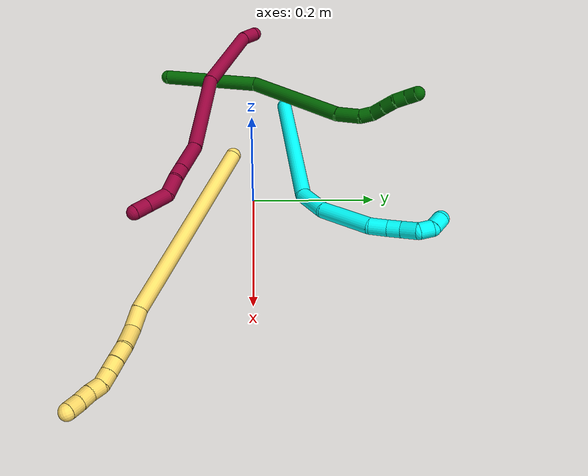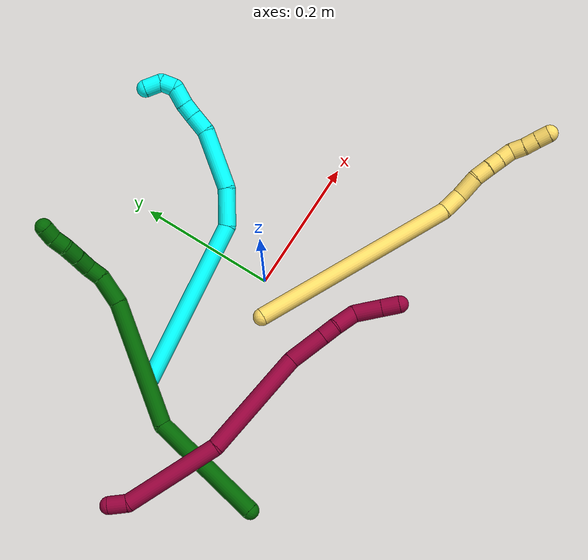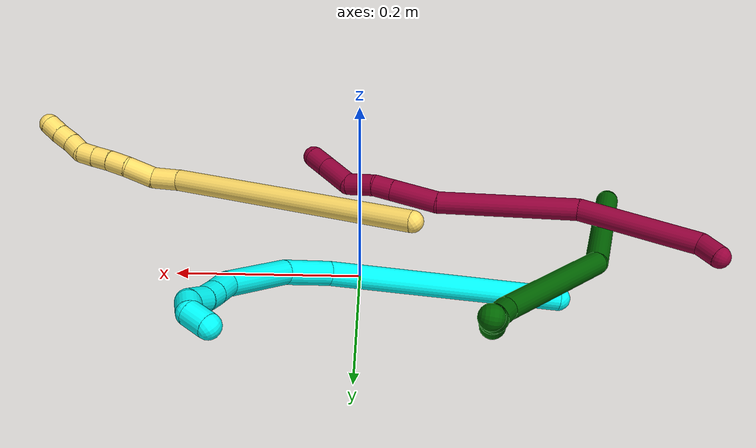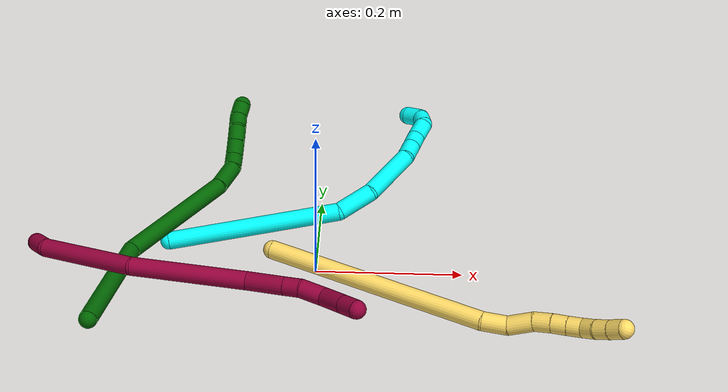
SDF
<sdf version="1.7">
 <world name="default">
  <model name="3">
   <static>0</static>
   <link name="3">
    <collision name="collision-cylinder-e_1_1_4">
     <pose>0.074368 -0.038583 -0.087111 2.72465 0.662787 2.03911</pose>
     <geometry><cylinder><radius>0.0125</radius><length>0.241723</length></cylinder></geometry>
     <surface>
      <friction><ode><mu>1.16</mu><mu2>1.16</mu2><slip1>0</slip1><slip2>0</slip2></ode></friction>
      <contact><ode><kp>1e+06</kp><kd>1</kd><max_vel>0</max_vel><min_depth>0.001</min_depth></ode></contact>
     </surface>
    </collision>
    <visual name="visual-cylinder-e_1_1_4">
     <pose>0.074368 -0.038583 -0.087111 2.72465 0.662787 2.03911</pose>
     <geometry><cylinder><radius>0.0125</radius><length>0.241723</length></cylinder></geometry>
     <material><ambient>0.003922 1 0.996078 1</ambient></material>
    </visual>
    <collision name="collision-cylinder-e_2_4_5">
     <pose>0.165854 -0.072776 -0.194533 -2.92875 0.689072 -2.56293</pose>
     <geometry><cylinder><radius>0.0125</radius><length>0.053846</length></cylinder></geometry>
     <surface>
      <friction><ode><mu>1.16</mu><mu2>1.16</mu2><slip1>0</slip1><slip2>0</slip2></ode></friction>
      <contact><ode><kp>1e+06</kp><kd>1</kd><max_vel>0</max_vel><min_depth>0.001</min_depth></ode></contact>
     </surface>
    </collision>
    <visual name="visual-cylinder-e_2_4_5">
     <pose>0.165854 -0.072776 -0.194533 -2.92875 0.689072 -2.56293</pose>
     <geometry><cylinder><radius>0.0125</radius><length>0.053846</length></cylinder></geometry>
     <material><ambient>0.003922 1 0.996078 1</ambient></material>
    </visual>
    <collision name="collision-cylinder-e_3_5_6">
     <pose>0.20387 -0.048628 -0.246108 -2.57798 0.514315 -1.47483</pose>
     <geometry><cylinder><radius>0.0125</radius><length>0.084959</length></cylinder></geometry>
     <surface>
      <friction><ode><mu>1.16</mu><mu2>1.16</mu2><slip1>0</slip1><slip2>0</slip2></ode></friction>
      <contact><ode><kp>1e+06</kp><kd>1</kd><max_vel>0</max_vel><min_depth>0.001</min_depth></ode></contact>
     </surface>
    </collision>
    <visual name="visual-cylinder-e_3_5_6">
     <pose>0.20387 -0.048628 -0.246108 -2.57798 0.514315 -1.47483</pose>
     <geometry><cylinder><radius>0.0125</radius><length>0.084959</length></cylinder></geometry>
     <material><ambient>0.003922 1 0.996078 1</ambient></material>
    </visual>
    <collision name="collision-cylinder-e_4_6_7">
     <pose>0.228406 -0.01923 -0.286403 -2.32365 0.268788 -0.604799</pose>
     <geometry><cylinder><radius>0.0125</radius><length>0.027405</length></cylinder></geometry>
     <surface>
      <friction><ode><mu>1.16</mu><mu2>1.16</mu2><slip1>0</slip1><slip2>0</slip2></ode></friction>
      <contact><ode><kp>1e+06</kp><kd>1</kd><max_vel>0</max_vel><min_depth>0.001</min_depth></ode></contact>
     </surface>
    </collision>
    <visual name="visual-cylinder-e_4_6_7">
     <pose>0.228406 -0.01923 -0.286403 -2.32365 0.268788 -0.604799</pose>
     <geometry><cylinder><radius>0.0125</radius><length>0.027405</length></cylinder></geometry>
     <material><ambient>0.003922 1 0.996078 1</ambient></material>
    </visual>
    <collision name="collision-cylinder-e_5_7_8">
     <pose>0.235376 -0.002199 -0.302131 -2.30693 0.322376 -0.702998</pose>
     <geometry><cylinder><radius>0.0125</radius><length>0.021028</length></cylinder></geometry>
     <surface>
      <friction><ode><mu>1.16</mu><mu2>1.16</mu2><slip1>0</slip1><slip2>0</slip2></ode></friction>
      <contact><ode><kp>1e+06</kp><kd>1</kd><max_vel>0</max_vel><min_depth>0.001</min_depth></ode></contact>
     </surface>
    </collision>
    <visual name="visual-cylinder-e_5_7_8">
     <pose>0.235376 -0.002199 -0.302131 -2.30693 0.322376 -0.702998</pose>
     <geometry><cylinder><radius>0.0125</radius><length>0.021028</length></cylinder></geometry>
     <material><ambient>0.003922 1 0.996078 1</ambient></material>
    </visual>
    <collision name="collision-cylinder-e_6_8_9">
     <pose>0.245374 0.013328 -0.316676 -2.33817 0.532834 -1.14204</pose>
     <geometry><cylinder><radius>0.0125</radius><length>0.02625</length></cylinder></geometry>
     <surface>
      <friction><ode><mu>1.16</mu><mu2>1.16</mu2><slip1>0</slip1><slip2>0</slip2></ode></friction>
      <contact><ode><kp>1e+06</kp><kd>1</kd><max_vel>0</max_vel><min_depth>0.001</min_depth></ode></contact>
     </surface>
    </collision>
    <visual name="visual-cylinder-e_6_8_9">
     <pose>0.245374 0.013328 -0.316676 -2.33817 0.532834 -1.14204</pose>
     <geometry><cylinder><radius>0.0125</radius><length>0.02625</length></cylinder></geometry>
     <material><ambient>0.003922 1 0.996078 1</ambient></material>
    </visual>
    <collision name="collision-cylinder-e_7_9_10">
     <pose>0.251211 0.031014 -0.328239 -1.94173 -0.080884 0.118172</pose>
     <geometry><cylinder><radius>0.0125</radius><length>0.02056</length></cylinder></geometry>
     <surface>
      <friction><ode><mu>1.16</mu><mu2>1.16</mu2><slip1>0</slip1><slip2>0</slip2></ode></friction>
      <contact><ode><kp>1e+06</kp><kd>1</kd><max_vel>0</max_vel><min_depth>0.001</min_depth></ode></contact>
     </surface>
    </collision>
    <visual name="visual-cylinder-e_7_9_10">
     <pose>0.251211 0.031014 -0.328239 -1.94173 -0.080884 0.118172</pose>
     <geometry><cylinder><radius>0.0125</radius><length>0.02056</length></cylinder></geometry>
     <material><ambient>0.003922 1 0.996078 1</ambient></material>
    </visual>
    <collision name="collision-cylinder-e_8_10_2">
     <pose>0.243908 0.050591 -0.329874 -1.36641 -0.563623 0.462876</pose>
     <geometry><cylinder><radius>0.0125</radius><length>0.02423</length></cylinder></geometry>
     <surface>
      <friction><ode><mu>1.16</mu><mu2>1.16</mu2><slip1>0</slip1><slip2>0</slip2></ode></friction>
      <contact><ode><kp>1e+06</kp><kd>1</kd><max_vel>0</max_vel><min_depth>0.001</min_depth></ode></contact>
     </surface>
    </collision>
    <visual name="visual-cylinder-e_8_10_2">
     <pose>0.243908 0.050591 -0.329874 -1.36641 -0.563623 0.462876</pose>
     <geometry><cylinder><radius>0.0125</radius><length>0.02423</length></cylinder></geometry>
     <material><ambient>0.003922 1 0.996078 1</ambient></material>
    </visual>
    <collision name="collision-sphere-2">
     <pose>0.237435 0.060619 -0.327796 0 -0 0</pose>
     <geometry><sphere><radius>0.0125</radius></sphere></geometry>
     <surface>
      <friction><ode><mu>1.16</mu><mu2>1.16</mu2><slip1>0</slip1><slip2>0</slip2></ode></friction>
      <contact><ode><kp>1e+06</kp><kd>1</kd><max_vel>0</max_vel><min_depth>0.001</min_depth></ode></contact>
     </surface>
    </collision>
    <visual name="visual-sphere-2">
     <pose>0.237435 0.060619 -0.327796 0 -0 0</pose>
     <geometry><sphere><radius>0.0125</radius></sphere></geometry>
     <material><ambient>0.003922 1 0.996078 1</ambient></material>
    </visual>
    <collision name="collision-sphere-10">
     <pose>0.25038 0.040564 -0.331953 0 -0 0</pose>
     <geometry><sphere><radius>0.0125</radius></sphere></geometry>
     <surface>
      <friction><ode><mu>1.16</mu><mu2>1.16</mu2><slip1>0</slip1><slip2>0</slip2></ode></friction>
      <contact><ode><kp>1e+06</kp><kd>1</kd><max_vel>0</max_vel><min_depth>0.001</min_depth></ode></contact>
     </surface>
    </collision>
    <visual name="visual-sphere-10">
     <pose>0.25038 0.040564 -0.331953 0 -0 0</pose>
     <geometry><sphere><radius>0.0125</radius></sphere></geometry>
     <material><ambient>0.003922 1 0.996078 1</ambient></material>
    </visual>
    <collision name="collision-sphere-9">
     <pose>0.252041 0.021465 -0.324524 0 -0 0</pose>
     <geometry><sphere><radius>0.0125</radius></sphere></geometry>
     <surface>
      <friction><ode><mu>1.16</mu><mu2>1.16</mu2><slip1>0</slip1><slip2>0</slip2></ode></friction>
      <contact><ode><kp>1e+06</kp><kd>1</kd><max_vel>0</max_vel><min_depth>0.001</min_depth></ode></contact>
     </surface>
    </collision>
    <visual name="visual-sphere-9">
     <pose>0.252041 0.021465 -0.324524 0 -0 0</pose>
     <geometry><sphere><radius>0.0125</radius></sphere></geometry>
     <material><ambient>0.003922 1 0.996078 1</ambient></material>
    </visual>
    <collision name="collision-sphere-4">
     <pose>0.148736 -0.077166 -0.174221 0 -0 0</pose>
     <geometry><sphere><radius>0.0125</radius></sphere></geometry>
     <surface>
      <friction><ode><mu>1.16</mu><mu2>1.16</mu2><slip1>0</slip1><slip2>0</slip2></ode></friction>
      <contact><ode><kp>1e+06</kp><kd>1</kd><max_vel>0</max_vel><min_depth>0.001</min_depth></ode></contact>
     </surface>
    </collision>
    <visual name="visual-sphere-4">
     <pose>0.148736 -0.077166 -0.174221 0 -0 0</pose>
     <geometry><sphere><radius>0.0125</radius></sphere></geometry>
     <material><ambient>0.003922 1 0.996078 1</ambient></material>
    </visual>
    <collision name="collision-sphere-1">
     <geometry><sphere><radius>0.0125</radius></sphere></geometry>
     <surface>
      <friction><ode><mu>1.16</mu><mu2>1.16</mu2><slip1>0</slip1><slip2>0</slip2></ode></friction>
      <contact><ode><kp>1e+06</kp><kd>1</kd><max_vel>0</max_vel><min_depth>0.001</min_depth></ode></contact>
     </surface>
    </collision>
    <visual name="visual-sphere-1">
     <geometry><sphere><radius>0.0125</radius></sphere></geometry>
     <material><ambient>0.003922 1 0.996078 1</ambient></material>
    </visual>
    <collision name="collision-sphere-8">
     <pose>0.238707 0.005191 -0.308827 0 -0 0</pose>
     <geometry><sphere><radius>0.0125</radius></sphere></geometry>
     <surface>
      <friction><ode><mu>1.16</mu><mu2>1.16</mu2><slip1>0</slip1><slip2>0</slip2></ode></friction>
      <contact><ode><kp>1e+06</kp><kd>1</kd><max_vel>0</max_vel><min_depth>0.001</min_depth></ode></contact>
     </surface>
    </collision>
    <visual name="visual-sphere-8">
     <pose>0.238707 0.005191 -0.308827 0 -0 0</pose>
     <geometry><sphere><radius>0.0125</radius></sphere></geometry>
     <material><ambient>0.003922 1 0.996078 1</ambient></material>
    </visual>
    <collision name="collision-sphere-5">
     <pose>0.182973 -0.068387 -0.214844 0 -0 0</pose>
     <geometry><sphere><radius>0.0125</radius></sphere></geometry>
     <surface>
      <friction><ode><mu>1.16</mu><mu2>1.16</mu2><slip1>0</slip1><slip2>0</slip2></ode></friction>
      <contact><ode><kp>1e+06</kp><kd>1</kd><max_vel>0</max_vel><min_depth>0.001</min_depth></ode></contact>
     </surface>
    </collision>
    <visual name="visual-sphere-5">
     <pose>0.182973 -0.068387 -0.214844 0 -0 0</pose>
     <geometry><sphere><radius>0.0125</radius></sphere></geometry>
     <material><ambient>0.003922 1 0.996078 1</ambient></material>
    </visual>
    <collision name="collision-sphere-6">
     <pose>0.224767 -0.02887 -0.277371 0 -0 0</pose>
     <geometry><sphere><radius>0.0125</radius></sphere></geometry>
     <surface>
      <friction><ode><mu>1.16</mu><mu2>1.16</mu2><slip1>0</slip1><slip2>0</slip2></ode></friction>
      <contact><ode><kp>1e+06</kp><kd>1</kd><max_vel>0</max_vel><min_depth>0.001</min_depth></ode></contact>
     </surface>
    </collision>
    <visual name="visual-sphere-6">
     <pose>0.224767 -0.02887 -0.277371 0 -0 0</pose>
     <geometry><sphere><radius>0.0125</radius></sphere></geometry>
     <material><ambient>0.003922 1 0.996078 1</ambient></material>
    </visual>
    <collision name="collision-sphere-7">
     <pose>0.232045 -0.009589 -0.295436 0 -0 0</pose>
     <geometry><sphere><radius>0.0125</radius></sphere></geometry>
     <surface>
      <friction><ode><mu>1.16</mu><mu2>1.16</mu2><slip1>0</slip1><slip2>0</slip2></ode></friction>
      <contact><ode><kp>1e+06</kp><kd>1</kd><max_vel>0</max_vel><min_depth>0.001</min_depth></ode></contact>
     </surface>
    </collision>
    <visual name="visual-sphere-7">
     <pose>0.232045 -0.009589 -0.295436 0 -0 0</pose>
     <geometry><sphere><radius>0.0125</radius></sphere></geometry>
     <material><ambient>0.003922 1 0.996078 1</ambient></material>
    </visual>
    <inertial>
     <pose>0.145904 -0.031473 -0.179393 0 -0 0</pose>
     <mass>0.5</mass>
     <inertia>
      <ixx>0.000376</ixx>
      <ixy>0</ixy>
      <ixz>0</ixz>
      <iyy>0.001558</iyy>
      <iyz>0</iyz>
      <izz>-0.00045</izz>
     </inertia>
    </inertial>
   </link>
   <pose>-0.2085 0.057 0.011488 0.682645 -1.06072 -0.114688</pose>
  </model>
  <model name="5">
   <static>0</static>
   <link name="5">
    <collision name="collision-cylinder-e_1_1_4">
     <pose>0.105951 -0.060098 -0.094007 2.57278 0.759549 1.87733</pose>
     <geometry><cylinder><radius>0.0125</radius><length>0.307731</length></cylinder></geometry>
     <surface>
      <friction><ode><mu>1.16</mu><mu2>1.16</mu2><slip1>0</slip1><slip2>0</slip2></ode></friction>
      <contact><ode><kp>1e+06</kp><kd>1</kd><max_vel>0</max_vel><min_depth>0.001</min_depth></ode></contact>
     </surface>
    </collision>
    <visual name="visual-cylinder-e_1_1_4">
     <pose>0.105951 -0.060098 -0.094007 2.57278 0.759549 1.87733</pose>
     <geometry><cylinder><radius>0.0125</radius><length>0.307731</length></cylinder></geometry>
     <material><ambient>1 0.858824 0.4 1</ambient></material>
    </visual>
    <collision name="collision-cylinder-e_2_4_5">
     <pose>0.222762 -0.123541 -0.200068 2.87089 0.71493 2.44235</pose>
     <geometry><cylinder><radius>0.0125</radius><length>0.033133</length></cylinder></geometry>
     <surface>
      <friction><ode><mu>1.16</mu><mu2>1.16</mu2><slip1>0</slip1><slip2>0</slip2></ode></friction>
      <contact><ode><kp>1e+06</kp><kd>1</kd><max_vel>0</max_vel><min_depth>0.001</min_depth></ode></contact>
     </surface>
    </collision>
    <visual name="visual-cylinder-e_2_4_5">
     <pose>0.222762 -0.123541 -0.200068 2.87089 0.71493 2.44235</pose>
     <geometry><cylinder><radius>0.0125</radius><length>0.033133</length></cylinder></geometry>
     <material><ambient>1 0.858824 0.4 1</ambient></material>
    </visual>
    <collision name="collision-cylinder-e_3_5_6">
     <pose>0.248039 -0.126136 -0.221485 -3.06167 0.993335 -2.99432</pose>
     <geometry><cylinder><radius>0.0125</radius><length>0.034412</length></cylinder></geometry>
     <surface>
      <friction><ode><mu>1.16</mu><mu2>1.16</mu2><slip1>0</slip1><slip2>0</slip2></ode></friction>
      <contact><ode><kp>1e+06</kp><kd>1</kd><max_vel>0</max_vel><min_depth>0.001</min_depth></ode></contact>
     </surface>
    </collision>
    <visual name="visual-cylinder-e_3_5_6">
     <pose>0.248039 -0.126136 -0.221485 -3.06167 0.993335 -2.99432</pose>
     <geometry><cylinder><radius>0.0125</radius><length>0.034412</length></cylinder></geometry>
     <material><ambient>1 0.858824 0.4 1</ambient></material>
    </visual>
    <collision name="collision-cylinder-e_4_6_7">
     <pose>0.272148 -0.127839 -0.237542 2.79035 0.936647 2.46685</pose>
     <geometry><cylinder><radius>0.0125</radius><length>0.024066</length></cylinder></geometry>
     <surface>
      <friction><ode><mu>1.16</mu><mu2>1.16</mu2><slip1>0</slip1><slip2>0</slip2></ode></friction>
      <contact><ode><kp>1e+06</kp><kd>1</kd><max_vel>0</max_vel><min_depth>0.001</min_depth></ode></contact>
     </surface>
    </collision>
    <visual name="visual-cylinder-e_4_6_7">
     <pose>0.272148 -0.127839 -0.237542 2.79035 0.936647 2.46685</pose>
     <geometry><cylinder><radius>0.0125</radius><length>0.024066</length></cylinder></geometry>
     <material><ambient>1 0.858824 0.4 1</ambient></material>
    </visual>
    <collision name="collision-cylinder-e_5_7_8">
     <pose>0.289645 -0.132883 -0.250248 2.73468 0.872739 2.30857</pose>
     <geometry><cylinder><radius>0.0125</radius><length>0.020372</length></cylinder></geometry>
     <surface>
      <friction><ode><mu>1.16</mu><mu2>1.16</mu2><slip1>0</slip1><slip2>0</slip2></ode></friction>
      <contact><ode><kp>1e+06</kp><kd>1</kd><max_vel>0</max_vel><min_depth>0.001</min_depth></ode></contact>
     </surface>
    </collision>
    <visual name="visual-cylinder-e_5_7_8">
     <pose>0.289645 -0.132883 -0.250248 2.73468 0.872739 2.30857</pose>
     <geometry><cylinder><radius>0.0125</radius><length>0.020372</length></cylinder></geometry>
     <material><ambient>1 0.858824 0.4 1</ambient></material>
    </visual>
    <collision name="collision-cylinder-e_6_8_9">
     <pose>0.30535 -0.13787 -0.262007 2.74659 0.903447 2.35922</pose>
     <geometry><cylinder><radius>0.0125</radius><length>0.02012</length></cylinder></geometry>
     <surface>
      <friction><ode><mu>1.16</mu><mu2>1.16</mu2><slip1>0</slip1><slip2>0</slip2></ode></friction>
      <contact><ode><kp>1e+06</kp><kd>1</kd><max_vel>0</max_vel><min_depth>0.001</min_depth></ode></contact>
     </surface>
    </collision>
    <visual name="visual-cylinder-e_6_8_9">
     <pose>0.30535 -0.13787 -0.262007 2.74659 0.903447 2.35922</pose>
     <geometry><cylinder><radius>0.0125</radius><length>0.02012</length></cylinder></geometry>
     <material><ambient>1 0.858824 0.4 1</ambient></material>
    </visual>
    <collision name="collision-cylinder-e_7_9_10">
     <pose>0.322563 -0.143494 -0.269667 2.10602 1.18774 1.73998</pose>
     <geometry><cylinder><radius>0.0125</radius><length>0.020077</length></cylinder></geometry>
     <surface>
      <friction><ode><mu>1.16</mu><mu2>1.16</mu2><slip1>0</slip1><slip2>0</slip2></ode></friction>
      <contact><ode><kp>1e+06</kp><kd>1</kd><max_vel>0</max_vel><min_depth>0.001</min_depth></ode></contact>
     </surface>
    </collision>
    <visual name="visual-cylinder-e_7_9_10">
     <pose>0.322563 -0.143494 -0.269667 2.10602 1.18774 1.73998</pose>
     <geometry><cylinder><radius>0.0125</radius><length>0.020077</length></cylinder></geometry>
     <material><ambient>1 0.858824 0.4 1</ambient></material>
    </visual>
    <collision name="collision-cylinder-e_8_10_11">
     <pose>0.341173 -0.148914 -0.274613 2.51537 1.18819 2.24771</pose>
     <geometry><cylinder><radius>0.0125</radius><length>0.020046</length></cylinder></geometry>
     <surface>
      <friction><ode><mu>1.16</mu><mu2>1.16</mu2><slip1>0</slip1><slip2>0</slip2></ode></friction>
      <contact><ode><kp>1e+06</kp><kd>1</kd><max_vel>0</max_vel><min_depth>0.001</min_depth></ode></contact>
     </surface>
    </collision>
    <visual name="visual-cylinder-e_8_10_11">
     <pose>0.341173 -0.148914 -0.274613 2.51537 1.18819 2.24771</pose>
     <geometry><cylinder><radius>0.0125</radius><length>0.020046</length></cylinder></geometry>
     <material><ambient>1 0.858824 0.4 1</ambient></material>
    </visual>
    <collision name="collision-cylinder-e_9_11_2">
     <pose>0.360035 -0.153048 -0.279922 2.4358 1.26761 2.21249</pose>
     <geometry><cylinder><radius>0.0125</radius><length>0.020043</length></cylinder></geometry>
     <surface>
      <friction><ode><mu>1.16</mu><mu2>1.16</mu2><slip1>0</slip1><slip2>0</slip2></ode></friction>
      <contact><ode><kp>1e+06</kp><kd>1</kd><max_vel>0</max_vel><min_depth>0.001</min_depth></ode></contact>
     </surface>
    </collision>
    <visual name="visual-cylinder-e_9_11_2">
     <pose>0.360035 -0.153048 -0.279922 2.4358 1.26761 2.21249</pose>
     <geometry><cylinder><radius>0.0125</radius><length>0.020043</length></cylinder></geometry>
     <material><ambient>1 0.858824 0.4 1</ambient></material>
    </visual>
    <collision name="collision-sphere-2">
     <pose>0.3696 -0.154989 -0.282199 0 -0 0</pose>
     <geometry><sphere><radius>0.0125</radius></sphere></geometry>
     <surface>
      <friction><ode><mu>1.16</mu><mu2>1.16</mu2><slip1>0</slip1><slip2>0</slip2></ode></friction>
      <contact><ode><kp>1e+06</kp><kd>1</kd><max_vel>0</max_vel><min_depth>0.001</min_depth></ode></contact>
     </surface>
    </collision>
    <visual name="visual-sphere-2">
     <pose>0.3696 -0.154989 -0.282199 0 -0 0</pose>
     <geometry><sphere><radius>0.0125</radius></sphere></geometry>
     <material><ambient>1 0.858824 0.4 1</ambient></material>
    </visual>
    <collision name="collision-sphere-11">
     <pose>0.350471 -0.151107 -0.277645 0 -0 0</pose>
     <geometry><sphere><radius>0.0125</radius></sphere></geometry>
     <surface>
      <friction><ode><mu>1.16</mu><mu2>1.16</mu2><slip1>0</slip1><slip2>0</slip2></ode></friction>
      <contact><ode><kp>1e+06</kp><kd>1</kd><max_vel>0</max_vel><min_depth>0.001</min_depth></ode></contact>
     </surface>
    </collision>
    <visual name="visual-sphere-11">
     <pose>0.350471 -0.151107 -0.277645 0 -0 0</pose>
     <geometry><sphere><radius>0.0125</radius></sphere></geometry>
     <material><ambient>1 0.858824 0.4 1</ambient></material>
    </visual>
    <collision name="collision-sphere-10">
     <pose>0.331874 -0.146721 -0.271581 0 -0 0</pose>
     <geometry><sphere><radius>0.0125</radius></sphere></geometry>
     <surface>
      <friction><ode><mu>1.16</mu><mu2>1.16</mu2><slip1>0</slip1><slip2>0</slip2></ode></friction>
      <contact><ode><kp>1e+06</kp><kd>1</kd><max_vel>0</max_vel><min_depth>0.001</min_depth></ode></contact>
     </surface>
    </collision>
    <visual name="visual-sphere-10">
     <pose>0.331874 -0.146721 -0.271581 0 -0 0</pose>
     <geometry><sphere><radius>0.0125</radius></sphere></geometry>
     <material><ambient>1 0.858824 0.4 1</ambient></material>
    </visual>
    <collision name="collision-sphere-9">
     <pose>0.313252 -0.140266 -0.267754 0 -0 0</pose>
     <geometry><sphere><radius>0.0125</radius></sphere></geometry>
     <surface>
      <friction><ode><mu>1.16</mu><mu2>1.16</mu2><slip1>0</slip1><slip2>0</slip2></ode></friction>
      <contact><ode><kp>1e+06</kp><kd>1</kd><max_vel>0</max_vel><min_depth>0.001</min_depth></ode></contact>
     </surface>
    </collision>
    <visual name="visual-sphere-9">
     <pose>0.313252 -0.140266 -0.267754 0 -0 0</pose>
     <geometry><sphere><radius>0.0125</radius></sphere></geometry>
     <material><ambient>1 0.858824 0.4 1</ambient></material>
    </visual>
    <collision name="collision-sphere-4">
     <pose>0.211902 -0.120196 -0.188013 0 -0 0</pose>
     <geometry><sphere><radius>0.0125</radius></sphere></geometry>
     <surface>
      <friction><ode><mu>1.16</mu><mu2>1.16</mu2><slip1>0</slip1><slip2>0</slip2></ode></friction>
      <contact><ode><kp>1e+06</kp><kd>1</kd><max_vel>0</max_vel><min_depth>0.001</min_depth></ode></contact>
     </surface>
    </collision>
    <visual name="visual-sphere-4">
     <pose>0.211902 -0.120196 -0.188013 0 -0 0</pose>
     <geometry><sphere><radius>0.0125</radius></sphere></geometry>
     <material><ambient>1 0.858824 0.4 1</ambient></material>
    </visual>
    <collision name="collision-sphere-1">
     <geometry><sphere><radius>0.0125</radius></sphere></geometry>
     <surface>
      <friction><ode><mu>1.16</mu><mu2>1.16</mu2><slip1>0</slip1><slip2>0</slip2></ode></friction>
      <contact><ode><kp>1e+06</kp><kd>1</kd><max_vel>0</max_vel><min_depth>0.001</min_depth></ode></contact>
     </surface>
    </collision>
    <visual name="visual-sphere-1">
     <geometry><sphere><radius>0.0125</radius></sphere></geometry>
     <material><ambient>1 0.858824 0.4 1</ambient></material>
    </visual>
    <collision name="collision-sphere-8">
     <pose>0.297449 -0.135475 -0.256261 0 -0 0</pose>
     <geometry><sphere><radius>0.0125</radius></sphere></geometry>
     <surface>
      <friction><ode><mu>1.16</mu><mu2>1.16</mu2><slip1>0</slip1><slip2>0</slip2></ode></friction>
      <contact><ode><kp>1e+06</kp><kd>1</kd><max_vel>0</max_vel><min_depth>0.001</min_depth></ode></contact>
     </surface>
    </collision>
    <visual name="visual-sphere-8">
     <pose>0.297449 -0.135475 -0.256261 0 -0 0</pose>
     <geometry><sphere><radius>0.0125</radius></sphere></geometry>
     <material><ambient>1 0.858824 0.4 1</ambient></material>
    </visual>
    <collision name="collision-sphere-5">
     <pose>0.233623 -0.126886 -0.212122 0 -0 0</pose>
     <geometry><sphere><radius>0.0125</radius></sphere></geometry>
     <surface>
      <friction><ode><mu>1.16</mu><mu2>1.16</mu2><slip1>0</slip1><slip2>0</slip2></ode></friction>
      <contact><ode><kp>1e+06</kp><kd>1</kd><max_vel>0</max_vel><min_depth>0.001</min_depth></ode></contact>
     </surface>
    </collision>
    <visual name="visual-sphere-5">
     <pose>0.233623 -0.126886 -0.212122 0 -0 0</pose>
     <geometry><sphere><radius>0.0125</radius></sphere></geometry>
     <material><ambient>1 0.858824 0.4 1</ambient></material>
    </visual>
    <collision name="collision-sphere-6">
     <pose>0.262455 -0.125386 -0.230848 0 -0 0</pose>
     <geometry><sphere><radius>0.0125</radius></sphere></geometry>
     <surface>
      <friction><ode><mu>1.16</mu><mu2>1.16</mu2><slip1>0</slip1><slip2>0</slip2></ode></friction>
      <contact><ode><kp>1e+06</kp><kd>1</kd><max_vel>0</max_vel><min_depth>0.001</min_depth></ode></contact>
     </surface>
    </collision>
    <visual name="visual-sphere-6">
     <pose>0.262455 -0.125386 -0.230848 0 -0 0</pose>
     <geometry><sphere><radius>0.0125</radius></sphere></geometry>
     <material><ambient>1 0.858824 0.4 1</ambient></material>
    </visual>
    <collision name="collision-sphere-7">
     <pose>0.281842 -0.130292 -0.244236 0 -0 0</pose>
     <geometry><sphere><radius>0.0125</radius></sphere></geometry>
     <surface>
      <friction><ode><mu>1.16</mu><mu2>1.16</mu2><slip1>0</slip1><slip2>0</slip2></ode></friction>
      <contact><ode><kp>1e+06</kp><kd>1</kd><max_vel>0</max_vel><min_depth>0.001</min_depth></ode></contact>
     </surface>
    </collision>
    <visual name="visual-sphere-7">
     <pose>0.281842 -0.130292 -0.244236 0 -0 0</pose>
     <geometry><sphere><radius>0.0125</radius></sphere></geometry>
     <material><ambient>1 0.858824 0.4 1</ambient></material>
    </visual>
    <inertial>
     <pose>0.175292 -0.088838 -0.15159 0 -0 0</pose>
     <mass>0.5</mass>
     <inertia>
      <ixx>0.001179</ixx>
      <ixy>0</ixy>
      <ixz>0</ixz>
      <iyy>0.003181</iyy>
      <iyz>0</iyz>
      <izz>-0.000761</izz>
     </inertia>
    </inertial>
   </link>
   <pose>-0.056326 -0.032934 0.050977 0.918412 -0.705023 -0.701332</pose>
  </model>
  <model name="6">
   <static>0</static>
   <link name="6">
    <collision name="collision-cylinder-e_1_1_4">
     <pose>0.030113 0.076355 -0.018707 -1.81106 0.365814 -0.46307</pose>
     <geometry><cylinder><radius>0.0125</radius><length>0.168366</length></cylinder></geometry>
     <surface>
      <friction><ode><mu>1.16</mu><mu2>1.16</mu2><slip1>0</slip1><slip2>0</slip2></ode></friction>
      <contact><ode><kp>1e+06</kp><kd>1</kd><max_vel>0</max_vel><min_depth>0.001</min_depth></ode></contact>
     </surface>
    </collision>
    <visual name="visual-cylinder-e_1_1_4">
     <pose>0.030113 0.076355 -0.018707 -1.81106 0.365814 -0.46307</pose>
     <geometry><cylinder><radius>0.0125</radius><length>0.168366</length></cylinder></geometry>
     <material><ambient>0 0.392157 0.003922 1</ambient></material>
    </visual>
    <collision name="collision-cylinder-e_2_4_5">
     <pose>0.087524 0.217251 -0.09407 -2.29122 0.307764 -0.660045</pose>
     <geometry><cylinder><radius>0.0125</radius><length>0.180229</length></cylinder></geometry>
     <surface>
      <friction><ode><mu>1.16</mu><mu2>1.16</mu2><slip1>0</slip1><slip2>0</slip2></ode></friction>
      <contact><ode><kp>1e+06</kp><kd>1</kd><max_vel>0</max_vel><min_depth>0.001</min_depth></ode></contact>
     </surface>
    </collision>
    <visual name="visual-cylinder-e_2_4_5">
     <pose>0.087524 0.217251 -0.09407 -2.29122 0.307764 -0.660045</pose>
     <geometry><cylinder><radius>0.0125</radius><length>0.180229</length></cylinder></geometry>
     <material><ambient>0 0.392157 0.003922 1</ambient></material>
    </visual>
    <collision name="collision-cylinder-e_3_5_6">
     <pose>0.124575 0.298315 -0.16006 -2.08503 0.474713 -0.785919</pose>
     <geometry><cylinder><radius>0.0125</radius><length>0.042673</length></cylinder></geometry>
     <surface>
      <friction><ode><mu>1.16</mu><mu2>1.16</mu2><slip1>0</slip1><slip2>0</slip2></ode></friction>
      <contact><ode><kp>1e+06</kp><kd>1</kd><max_vel>0</max_vel><min_depth>0.001</min_depth></ode></contact>
     </surface>
    </collision>
    <visual name="visual-cylinder-e_3_5_6">
     <pose>0.124575 0.298315 -0.16006 -2.08503 0.474713 -0.785919</pose>
     <geometry><cylinder><radius>0.0125</radius><length>0.042673</length></cylinder></geometry>
     <material><ambient>0 0.392157 0.003922 1</ambient></material>
    </visual>
    <collision name="collision-cylinder-e_4_6_7">
     <pose>0.141263 0.323204 -0.170662 -1.72116 0.686586 -0.787902</pose>
     <geometry><cylinder><radius>0.0125</radius><length>0.021881</length></cylinder></geometry>
     <surface>
      <friction><ode><mu>1.16</mu><mu2>1.16</mu2><slip1>0</slip1><slip2>0</slip2></ode></friction>
      <contact><ode><kp>1e+06</kp><kd>1</kd><max_vel>0</max_vel><min_depth>0.001</min_depth></ode></contact>
     </surface>
    </collision>
    <visual name="visual-cylinder-e_4_6_7">
     <pose>0.141263 0.323204 -0.170662 -1.72116 0.686586 -0.787902</pose>
     <geometry><cylinder><radius>0.0125</radius><length>0.021881</length></cylinder></geometry>
     <material><ambient>0 0.392157 0.003922 1</ambient></material>
    </visual>
    <collision name="collision-cylinder-e_5_7_8">
     <pose>0.158533 0.336763 -0.174475 -2.02656 1.06055 -1.5093</pose>
     <geometry><cylinder><radius>0.0125</radius><length>0.023686</length></cylinder></geometry>
     <surface>
      <friction><ode><mu>1.16</mu><mu2>1.16</mu2><slip1>0</slip1><slip2>0</slip2></ode></friction>
      <contact><ode><kp>1e+06</kp><kd>1</kd><max_vel>0</max_vel><min_depth>0.001</min_depth></ode></contact>
     </surface>
    </collision>
    <visual name="visual-cylinder-e_5_7_8">
     <pose>0.158533 0.336763 -0.174475 -2.02656 1.06055 -1.5093</pose>
     <geometry><cylinder><radius>0.0125</radius><length>0.023686</length></cylinder></geometry>
     <material><ambient>0 0.392157 0.003922 1</ambient></material>
    </visual>
    <collision name="collision-cylinder-e_6_8_9">
     <pose>0.178673 0.347186 -0.179221 -1.9691 1.04629 -1.43019</pose>
     <geometry><cylinder><radius>0.0125</radius><length>0.022657</length></cylinder></geometry>
     <surface>
      <friction><ode><mu>1.16</mu><mu2>1.16</mu2><slip1>0</slip1><slip2>0</slip2></ode></friction>
      <contact><ode><kp>1e+06</kp><kd>1</kd><max_vel>0</max_vel><min_depth>0.001</min_depth></ode></contact>
     </surface>
    </collision>
    <visual name="visual-cylinder-e_6_8_9">
     <pose>0.178673 0.347186 -0.179221 -1.9691 1.04629 -1.43019</pose>
     <geometry><cylinder><radius>0.0125</radius><length>0.022657</length></cylinder></geometry>
     <material><ambient>0 0.392157 0.003922 1</ambient></material>
    </visual>
    <collision name="collision-cylinder-e_7_9_10">
     <pose>0.195764 0.359512 -0.182527 -1.72531 0.792544 -0.909008</pose>
     <geometry><cylinder><radius>0.0125</radius><length>0.020462</length></cylinder></geometry>
     <surface>
      <friction><ode><mu>1.16</mu><mu2>1.16</mu2><slip1>0</slip1><slip2>0</slip2></ode></friction>
      <contact><ode><kp>1e+06</kp><kd>1</kd><max_vel>0</max_vel><min_depth>0.001</min_depth></ode></contact>
     </surface>
    </collision>
    <visual name="visual-cylinder-e_7_9_10">
     <pose>0.195764 0.359512 -0.182527 -1.72531 0.792544 -0.909008</pose>
     <geometry><cylinder><radius>0.0125</radius><length>0.020462</length></cylinder></geometry>
     <material><ambient>0 0.392157 0.003922 1</ambient></material>
    </visual>
    <collision name="collision-cylinder-e_8_10_2">
     <pose>0.210822 0.371939 -0.187046 -2.14051 0.887314 -1.43065</pose>
     <geometry><cylinder><radius>0.0125</radius><length>0.020045</length></cylinder></geometry>
     <surface>
      <friction><ode><mu>1.16</mu><mu2>1.16</mu2><slip1>0</slip1><slip2>0</slip2></ode></friction>
      <contact><ode><kp>1e+06</kp><kd>1</kd><max_vel>0</max_vel><min_depth>0.001</min_depth></ode></contact>
     </surface>
    </collision>
    <visual name="visual-cylinder-e_8_10_2">
     <pose>0.210822 0.371939 -0.187046 -2.14051 0.887314 -1.43065</pose>
     <geometry><cylinder><radius>0.0125</radius><length>0.020045</length></cylinder></geometry>
     <material><ambient>0 0.392157 0.003922 1</ambient></material>
    </visual>
    <collision name="collision-sphere-2">
     <pose>0.218593 0.377268 -0.19046 0 -0 0</pose>
     <geometry><sphere><radius>0.0125</radius></sphere></geometry>
     <surface>
      <friction><ode><mu>1.16</mu><mu2>1.16</mu2><slip1>0</slip1><slip2>0</slip2></ode></friction>
      <contact><ode><kp>1e+06</kp><kd>1</kd><max_vel>0</max_vel><min_depth>0.001</min_depth></ode></contact>
     </surface>
    </collision>
    <visual name="visual-sphere-2">
     <pose>0.218593 0.377268 -0.19046 0 -0 0</pose>
     <geometry><sphere><radius>0.0125</radius></sphere></geometry>
     <material><ambient>0 0.392157 0.003922 1</ambient></material>
    </visual>
    <collision name="collision-sphere-10">
     <pose>0.20305 0.366609 -0.183632 0 -0 0</pose>
     <geometry><sphere><radius>0.0125</radius></sphere></geometry>
     <surface>
      <friction><ode><mu>1.16</mu><mu2>1.16</mu2><slip1>0</slip1><slip2>0</slip2></ode></friction>
      <contact><ode><kp>1e+06</kp><kd>1</kd><max_vel>0</max_vel><min_depth>0.001</min_depth></ode></contact>
     </surface>
    </collision>
    <visual name="visual-sphere-10">
     <pose>0.20305 0.366609 -0.183632 0 -0 0</pose>
     <geometry><sphere><radius>0.0125</radius></sphere></geometry>
     <material><ambient>0 0.392157 0.003922 1</ambient></material>
    </visual>
    <collision name="collision-sphere-9">
     <pose>0.188478 0.352415 -0.181422 0 -0 0</pose>
     <geometry><sphere><radius>0.0125</radius></sphere></geometry>
     <surface>
      <friction><ode><mu>1.16</mu><mu2>1.16</mu2><slip1>0</slip1><slip2>0</slip2></ode></friction>
      <contact><ode><kp>1e+06</kp><kd>1</kd><max_vel>0</max_vel><min_depth>0.001</min_depth></ode></contact>
     </surface>
    </collision>
    <visual name="visual-sphere-9">
     <pose>0.188478 0.352415 -0.181422 0 -0 0</pose>
     <geometry><sphere><radius>0.0125</radius></sphere></geometry>
     <material><ambient>0 0.392157 0.003922 1</ambient></material>
    </visual>
    <collision name="collision-sphere-4">
     <pose>0.060226 0.152709 -0.037414 0 -0 0</pose>
     <geometry><sphere><radius>0.0125</radius></sphere></geometry>
     <surface>
      <friction><ode><mu>1.16</mu><mu2>1.16</mu2><slip1>0</slip1><slip2>0</slip2></ode></friction>
      <contact><ode><kp>1e+06</kp><kd>1</kd><max_vel>0</max_vel><min_depth>0.001</min_depth></ode></contact>
     </surface>
    </collision>
    <visual name="visual-sphere-4">
     <pose>0.060226 0.152709 -0.037414 0 -0 0</pose>
     <geometry><sphere><radius>0.0125</radius></sphere></geometry>
     <material><ambient>0 0.392157 0.003922 1</ambient></material>
    </visual>
    <collision name="collision-sphere-1">
     <geometry><sphere><radius>0.0125</radius></sphere></geometry>
     <surface>
      <friction><ode><mu>1.16</mu><mu2>1.16</mu2><slip1>0</slip1><slip2>0</slip2></ode></friction>
      <contact><ode><kp>1e+06</kp><kd>1</kd><max_vel>0</max_vel><min_depth>0.001</min_depth></ode></contact>
     </surface>
    </collision>
    <visual name="visual-sphere-1">
     <geometry><sphere><radius>0.0125</radius></sphere></geometry>
     <material><ambient>0 0.392157 0.003922 1</ambient></material>
    </visual>
    <collision name="collision-sphere-8">
     <pose>0.168867 0.341957 -0.177021 0 -0 0</pose>
     <geometry><sphere><radius>0.0125</radius></sphere></geometry>
     <surface>
      <friction><ode><mu>1.16</mu><mu2>1.16</mu2><slip1>0</slip1><slip2>0</slip2></ode></friction>
      <contact><ode><kp>1e+06</kp><kd>1</kd><max_vel>0</max_vel><min_depth>0.001</min_depth></ode></contact>
     </surface>
    </collision>
    <visual name="visual-sphere-8">
     <pose>0.168867 0.341957 -0.177021 0 -0 0</pose>
     <geometry><sphere><radius>0.0125</radius></sphere></geometry>
     <material><ambient>0 0.392157 0.003922 1</ambient></material>
    </visual>
    <collision name="collision-sphere-5">
     <pose>0.114823 0.281792 -0.150726 0 -0 0</pose>
     <geometry><sphere><radius>0.0125</radius></sphere></geometry>
     <surface>
      <friction><ode><mu>1.16</mu><mu2>1.16</mu2><slip1>0</slip1><slip2>0</slip2></ode></friction>
      <contact><ode><kp>1e+06</kp><kd>1</kd><max_vel>0</max_vel><min_depth>0.001</min_depth></ode></contact>
     </surface>
    </collision>
    <visual name="visual-sphere-5">
     <pose>0.114823 0.281792 -0.150726 0 -0 0</pose>
     <geometry><sphere><radius>0.0125</radius></sphere></geometry>
     <material><ambient>0 0.392157 0.003922 1</ambient></material>
    </visual>
    <collision name="collision-sphere-6">
     <pose>0.134328 0.314838 -0.169394 0 -0 0</pose>
     <geometry><sphere><radius>0.0125</radius></sphere></geometry>
     <surface>
      <friction><ode><mu>1.16</mu><mu2>1.16</mu2><slip1>0</slip1><slip2>0</slip2></ode></friction>
      <contact><ode><kp>1e+06</kp><kd>1</kd><max_vel>0</max_vel><min_depth>0.001</min_depth></ode></contact>
     </surface>
    </collision>
    <visual name="visual-sphere-6">
     <pose>0.134328 0.314838 -0.169394 0 -0 0</pose>
     <geometry><sphere><radius>0.0125</radius></sphere></geometry>
     <material><ambient>0 0.392157 0.003922 1</ambient></material>
    </visual>
    <collision name="collision-sphere-7">
     <pose>0.148198 0.33157 -0.171929 0 -0 0</pose>
     <geometry><sphere><radius>0.0125</radius></sphere></geometry>
     <surface>
      <friction><ode><mu>1.16</mu><mu2>1.16</mu2><slip1>0</slip1><slip2>0</slip2></ode></friction>
      <contact><ode><kp>1e+06</kp><kd>1</kd><max_vel>0</max_vel><min_depth>0.001</min_depth></ode></contact>
     </surface>
    </collision>
    <visual name="visual-sphere-7">
     <pose>0.148198 0.33157 -0.171929 0 -0 0</pose>
     <geometry><sphere><radius>0.0125</radius></sphere></geometry>
     <material><ambient>0 0.392157 0.003922 1</ambient></material>
    </visual>
    <inertial>
     <pose>0.090573 0.204935 -0.092691 0 -0 0</pose>
     <mass>0.5</mass>
     <inertia>
      <ixx>0.000267</ixx>
      <ixy>0</ixy>
      <ixz>0</ixz>
      <iyy>-0.000646</iyy>
      <iyz>0</iyz>
      <izz>-0.001052</izz>
     </inertia>
    </inertial>
   </link>
   <pose>-0.286623 -0.160326 0.01254 -2.11611 -1.16748 2.09654</pose>
  </model>
  <model name="8">
   <static>0</static>
   <link name="8">
    <collision name="collision-cylinder-e_1_1_4">
     <pose>-0.003762 0.000737 -0.012959 -3.08481 -0.282131 2.74682</pose>
     <geometry><cylinder><radius>0.0125</radius><length>0.027028</length></cylinder></geometry>
     <surface>
      <friction><ode><mu>1.16</mu><mu2>1.16</mu2><slip1>0</slip1><slip2>0</slip2></ode></friction>
      <contact><ode><kp>1e+06</kp><kd>1</kd><max_vel>0</max_vel><min_depth>0.001</min_depth></ode></contact>
     </surface>
    </collision>
    <visual name="visual-cylinder-e_1_1_4">
     <pose>-0.003762 0.000737 -0.012959 -3.08481 -0.282131 2.74682</pose>
     <geometry><cylinder><radius>0.0125</radius><length>0.027028</length></cylinder></geometry>
     <material><ambient>0.584314 0 0.227451 1</ambient></material>
    </visual>
    <collision name="collision-cylinder-e_2_4_5">
     <pose>0.005591 0.004054 -0.093926 -3.10366 0.190385 -2.74935</pose>
     <geometry><cylinder><radius>0.0125</radius><length>0.138618</length></cylinder></geometry>
     <surface>
      <friction><ode><mu>1.16</mu><mu2>1.16</mu2><slip1>0</slip1><slip2>0</slip2></ode></friction>
      <contact><ode><kp>1e+06</kp><kd>1</kd><max_vel>0</max_vel><min_depth>0.001</min_depth></ode></contact>
     </surface>
    </collision>
    <visual name="visual-cylinder-e_2_4_5">
     <pose>0.005591 0.004054 -0.093926 -3.10366 0.190385 -2.74935</pose>
     <geometry><cylinder><radius>0.0125</radius><length>0.138618</length></cylinder></geometry>
     <material><ambient>0.584314 0 0.227451 1</ambient></material>
    </visual>
    <collision name="collision-cylinder-e_3_5_6">
     <pose>0.057077 0.01099 -0.23123 -3.07883 0.50485 -2.89937</pose>
     <geometry><cylinder><radius>0.0125</radius><length>0.158659</length></cylinder></geometry>
     <surface>
      <friction><ode><mu>1.16</mu><mu2>1.16</mu2><slip1>0</slip1><slip2>0</slip2></ode></friction>
      <contact><ode><kp>1e+06</kp><kd>1</kd><max_vel>0</max_vel><min_depth>0.001</min_depth></ode></contact>
     </surface>
    </collision>
    <visual name="visual-cylinder-e_3_5_6">
     <pose>0.057077 0.01099 -0.23123 -3.07883 0.50485 -2.89937</pose>
     <geometry><cylinder><radius>0.0125</radius><length>0.158659</length></cylinder></geometry>
     <material><ambient>0.584314 0 0.227451 1</ambient></material>
    </visual>
    <collision name="collision-cylinder-e_4_6_7">
     <pose>0.102477 0.01517 -0.326947 3.13496 0.260055 3.09086</pose>
     <geometry><cylinder><radius>0.0125</radius><length>0.054681</length></cylinder></geometry>
     <surface>
      <friction><ode><mu>1.16</mu><mu2>1.16</mu2><slip1>0</slip1><slip2>0</slip2></ode></friction>
      <contact><ode><kp>1e+06</kp><kd>1</kd><max_vel>0</max_vel><min_depth>0.001</min_depth></ode></contact>
     </surface>
    </collision>
    <visual name="visual-cylinder-e_4_6_7">
     <pose>0.102477 0.01517 -0.326947 3.13496 0.260055 3.09086</pose>
     <geometry><cylinder><radius>0.0125</radius><length>0.054681</length></cylinder></geometry>
     <material><ambient>0.584314 0 0.227451 1</ambient></material>
    </visual>
    <collision name="collision-cylinder-e_5_7_8">
     <pose>0.112452 0.014887 -0.364256 3.13169 0.264185 3.06713</pose>
     <geometry><cylinder><radius>0.0125</radius><length>0.022561</length></cylinder></geometry>
     <surface>
      <friction><ode><mu>1.16</mu><mu2>1.16</mu2><slip1>0</slip1><slip2>0</slip2></ode></friction>
      <contact><ode><kp>1e+06</kp><kd>1</kd><max_vel>0</max_vel><min_depth>0.001</min_depth></ode></contact>
     </surface>
    </collision>
    <visual name="visual-cylinder-e_5_7_8">
     <pose>0.112452 0.014887 -0.364256 3.13169 0.264185 3.06713</pose>
     <geometry><cylinder><radius>0.0125</radius><length>0.022561</length></cylinder></geometry>
     <material><ambient>0.584314 0 0.227451 1</ambient></material>
    </visual>
    <collision name="collision-cylinder-e_6_8_9">
     <pose>0.12034 0.018479 -0.390638 -2.90721 0.300834 -1.82075</pose>
     <geometry><cylinder><radius>0.0125</radius><length>0.033357</length></cylinder></geometry>
     <surface>
      <friction><ode><mu>1.16</mu><mu2>1.16</mu2><slip1>0</slip1><slip2>0</slip2></ode></friction>
      <contact><ode><kp>1e+06</kp><kd>1</kd><max_vel>0</max_vel><min_depth>0.001</min_depth></ode></contact>
     </surface>
    </collision>
    <visual name="visual-cylinder-e_6_8_9">
     <pose>0.12034 0.018479 -0.390638 -2.90721 0.300834 -1.82075</pose>
     <geometry><cylinder><radius>0.0125</radius><length>0.033357</length></cylinder></geometry>
     <material><ambient>0.584314 0 0.227451 1</ambient></material>
    </visual>
    <collision name="collision-cylinder-e_7_9_10">
     <pose>0.120858 0.022244 -0.42559 -3.13819 -0.223567 3.11126</pose>
     <geometry><cylinder><radius>0.0125</radius><length>0.03991</length></cylinder></geometry>
     <surface>
      <friction><ode><mu>1.16</mu><mu2>1.16</mu2><slip1>0</slip1><slip2>0</slip2></ode></friction>
      <contact><ode><kp>1e+06</kp><kd>1</kd><max_vel>0</max_vel><min_depth>0.001</min_depth></ode></contact>
     </surface>
    </collision>
    <visual name="visual-cylinder-e_7_9_10">
     <pose>0.120858 0.022244 -0.42559 -3.13819 -0.223567 3.11126</pose>
     <geometry><cylinder><radius>0.0125</radius><length>0.03991</length></cylinder></geometry>
     <material><ambient>0.584314 0 0.227451 1</ambient></material>
    </visual>
    <collision name="collision-cylinder-e_8_10_2">
     <pose>0.113691 0.022409 -0.457338 -3.13358 -0.219571 3.06894</pose>
     <geometry><cylinder><radius>0.0125</radius><length>0.025186</length></cylinder></geometry>
     <surface>
      <friction><ode><mu>1.16</mu><mu2>1.16</mu2><slip1>0</slip1><slip2>0</slip2></ode></friction>
      <contact><ode><kp>1e+06</kp><kd>1</kd><max_vel>0</max_vel><min_depth>0.001</min_depth></ode></contact>
     </surface>
    </collision>
    <visual name="visual-cylinder-e_8_10_2">
     <pose>0.113691 0.022409 -0.457338 -3.13358 -0.219571 3.06894</pose>
     <geometry><cylinder><radius>0.0125</radius><length>0.025186</length></cylinder></geometry>
     <material><ambient>0.584314 0 0.227451 1</ambient></material>
    </visual>
    <collision name="collision-sphere-2">
     <pose>0.110948 0.022508 -0.469629 0 -0 0</pose>
     <geometry><sphere><radius>0.0125</radius></sphere></geometry>
     <surface>
      <friction><ode><mu>1.16</mu><mu2>1.16</mu2><slip1>0</slip1><slip2>0</slip2></ode></friction>
      <contact><ode><kp>1e+06</kp><kd>1</kd><max_vel>0</max_vel><min_depth>0.001</min_depth></ode></contact>
     </surface>
    </collision>
    <visual name="visual-sphere-2">
     <pose>0.110948 0.022508 -0.469629 0 -0 0</pose>
     <geometry><sphere><radius>0.0125</radius></sphere></geometry>
     <material><ambient>0.584314 0 0.227451 1</ambient></material>
    </visual>
    <collision name="collision-sphere-10">
     <pose>0.116434 0.022311 -0.445048 0 -0 0</pose>
     <geometry><sphere><radius>0.0125</radius></sphere></geometry>
     <surface>
      <friction><ode><mu>1.16</mu><mu2>1.16</mu2><slip1>0</slip1><slip2>0</slip2></ode></friction>
      <contact><ode><kp>1e+06</kp><kd>1</kd><max_vel>0</max_vel><min_depth>0.001</min_depth></ode></contact>
     </surface>
    </collision>
    <visual name="visual-sphere-10">
     <pose>0.116434 0.022311 -0.445048 0 -0 0</pose>
     <geometry><sphere><radius>0.0125</radius></sphere></geometry>
     <material><ambient>0.584314 0 0.227451 1</ambient></material>
    </visual>
    <collision name="collision-sphere-9">
     <pose>0.125282 0.022178 -0.406132 0 -0 0</pose>
     <geometry><sphere><radius>0.0125</radius></sphere></geometry>
     <surface>
      <friction><ode><mu>1.16</mu><mu2>1.16</mu2><slip1>0</slip1><slip2>0</slip2></ode></friction>
      <contact><ode><kp>1e+06</kp><kd>1</kd><max_vel>0</max_vel><min_depth>0.001</min_depth></ode></contact>
     </surface>
    </collision>
    <visual name="visual-sphere-9">
     <pose>0.125282 0.022178 -0.406132 0 -0 0</pose>
     <geometry><sphere><radius>0.0125</radius></sphere></geometry>
     <material><ambient>0.584314 0 0.227451 1</ambient></material>
    </visual>
    <collision name="collision-sphere-4">
     <pose>-0.007525 0.001473 -0.025918 0 -0 0</pose>
     <geometry><sphere><radius>0.0125</radius></sphere></geometry>
     <surface>
      <friction><ode><mu>1.16</mu><mu2>1.16</mu2><slip1>0</slip1><slip2>0</slip2></ode></friction>
      <contact><ode><kp>1e+06</kp><kd>1</kd><max_vel>0</max_vel><min_depth>0.001</min_depth></ode></contact>
     </surface>
    </collision>
    <visual name="visual-sphere-4">
     <pose>-0.007525 0.001473 -0.025918 0 -0 0</pose>
     <geometry><sphere><radius>0.0125</radius></sphere></geometry>
     <material><ambient>0.584314 0 0.227451 1</ambient></material>
    </visual>
    <collision name="collision-sphere-1">
     <geometry><sphere><radius>0.0125</radius></sphere></geometry>
     <surface>
      <friction><ode><mu>1.16</mu><mu2>1.16</mu2><slip1>0</slip1><slip2>0</slip2></ode></friction>
      <contact><ode><kp>1e+06</kp><kd>1</kd><max_vel>0</max_vel><min_depth>0.001</min_depth></ode></contact>
     </surface>
    </collision>
    <visual name="visual-sphere-1">
     <geometry><sphere><radius>0.0125</radius></sphere></geometry>
     <material><ambient>0.584314 0 0.227451 1</ambient></material>
    </visual>
    <collision name="collision-sphere-8">
     <pose>0.115398 0.014779 -0.375144 0 -0 0</pose>
     <geometry><sphere><radius>0.0125</radius></sphere></geometry>
     <surface>
      <friction><ode><mu>1.16</mu><mu2>1.16</mu2><slip1>0</slip1><slip2>0</slip2></ode></friction>
      <contact><ode><kp>1e+06</kp><kd>1</kd><max_vel>0</max_vel><min_depth>0.001</min_depth></ode></contact>
     </surface>
    </collision>
    <visual name="visual-sphere-8">
     <pose>0.115398 0.014779 -0.375144 0 -0 0</pose>
     <geometry><sphere><radius>0.0125</radius></sphere></geometry>
     <material><ambient>0.584314 0 0.227451 1</ambient></material>
    </visual>
    <collision name="collision-sphere-5">
     <pose>0.018707 0.006635 -0.161934 0 -0 0</pose>
     <geometry><sphere><radius>0.0125</radius></sphere></geometry>
     <surface>
      <friction><ode><mu>1.16</mu><mu2>1.16</mu2><slip1>0</slip1><slip2>0</slip2></ode></friction>
      <contact><ode><kp>1e+06</kp><kd>1</kd><max_vel>0</max_vel><min_depth>0.001</min_depth></ode></contact>
     </surface>
    </collision>
    <visual name="visual-sphere-5">
     <pose>0.018707 0.006635 -0.161934 0 -0 0</pose>
     <geometry><sphere><radius>0.0125</radius></sphere></geometry>
     <material><ambient>0.584314 0 0.227451 1</ambient></material>
    </visual>
    <collision name="collision-sphere-6">
     <pose>0.095447 0.015345 -0.300526 0 -0 0</pose>
     <geometry><sphere><radius>0.0125</radius></sphere></geometry>
     <surface>
      <friction><ode><mu>1.16</mu><mu2>1.16</mu2><slip1>0</slip1><slip2>0</slip2></ode></friction>
      <contact><ode><kp>1e+06</kp><kd>1</kd><max_vel>0</max_vel><min_depth>0.001</min_depth></ode></contact>
     </surface>
    </collision>
    <visual name="visual-sphere-6">
     <pose>0.095447 0.015345 -0.300526 0 -0 0</pose>
     <geometry><sphere><radius>0.0125</radius></sphere></geometry>
     <material><ambient>0.584314 0 0.227451 1</ambient></material>
    </visual>
    <collision name="collision-sphere-7">
     <pose>0.109507 0.014995 -0.353367 0 -0 0</pose>
     <geometry><sphere><radius>0.0125</radius></sphere></geometry>
     <surface>
      <friction><ode><mu>1.16</mu><mu2>1.16</mu2><slip1>0</slip1><slip2>0</slip2></ode></friction>
      <contact><ode><kp>1e+06</kp><kd>1</kd><max_vel>0</max_vel><min_depth>0.001</min_depth></ode></contact>
     </surface>
    </collision>
    <visual name="visual-sphere-7">
     <pose>0.109507 0.014995 -0.353367 0 -0 0</pose>
     <geometry><sphere><radius>0.0125</radius></sphere></geometry>
     <material><ambient>0.584314 0 0.227451 1</ambient></material>
    </visual>
    <inertial>
     <pose>0.059141 0.011119 -0.235373 0 -0 0</pose>
     <mass>0.5</mass>
     <inertia>
      <ixx>-0.000673</ixx>
      <ixy>0</ixy>
      <ixz>0</ixz>
      <iyy>0.000416</iyy>
      <iyz>0</iyz>
      <izz>-0.000275</izz>
     </inertia>
    </inertial>
   </link>
   <pose>-0.383469 0.003101 0.033519 -1.70871 0.2029 0.923385</pose>
  </model>
 </world>
</sdf>
